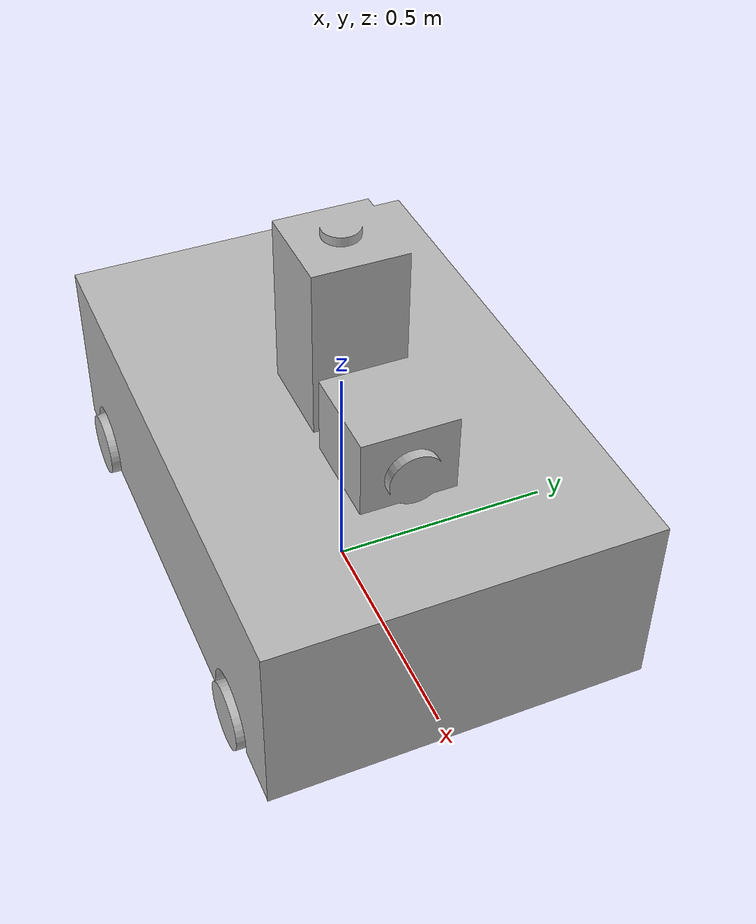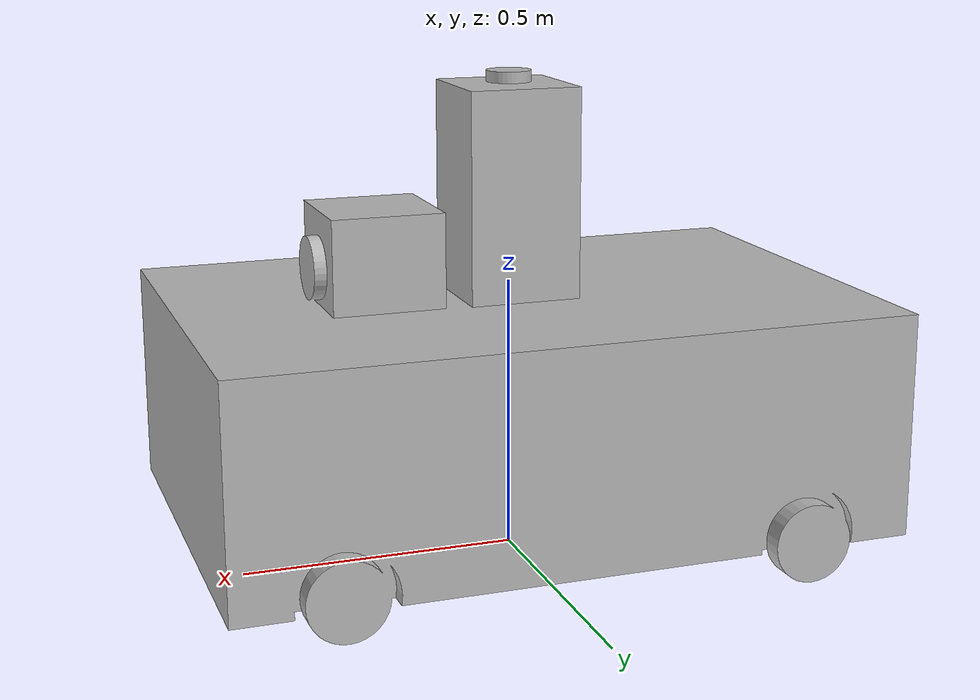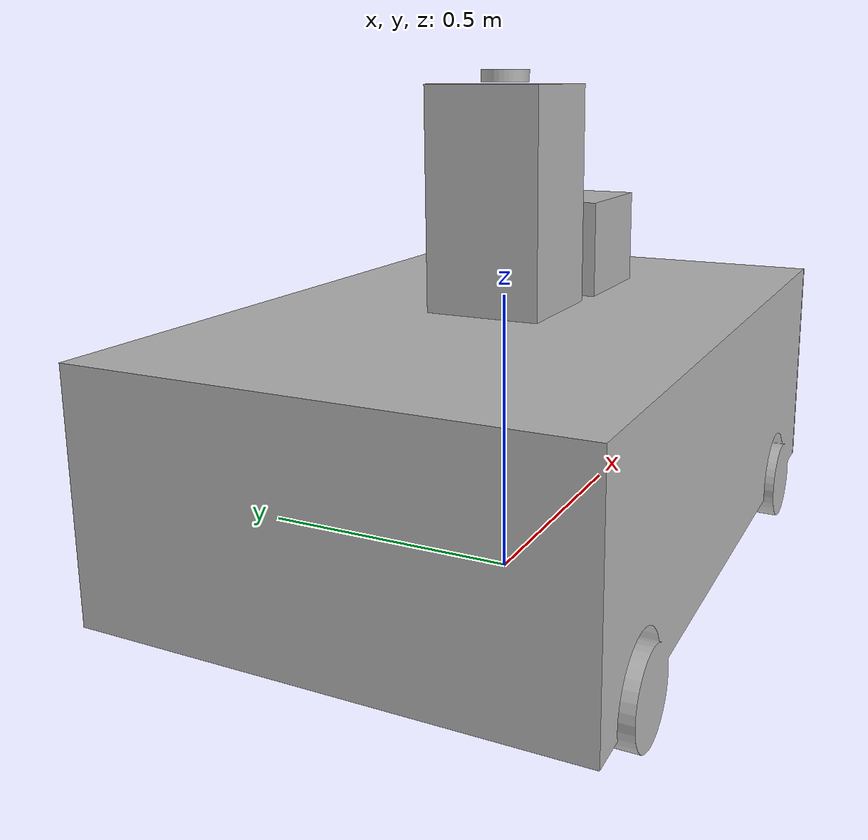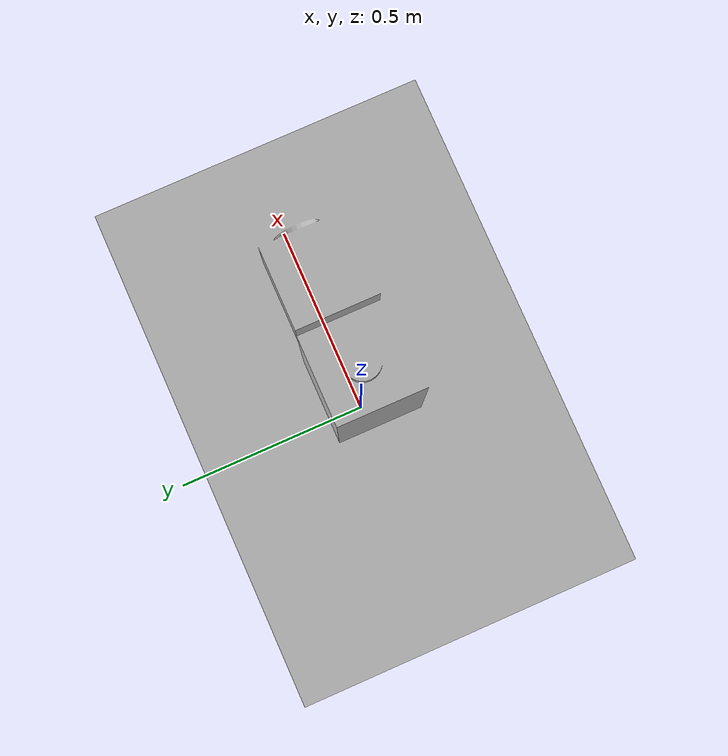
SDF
<?xml version="1.0" ?>
<sdf version="1.6">
  <model name="robo_camuflado">
    <static>false</static>  <!-- Defina como true se o modelo não deve mover-se -->

    <link name="base_link">
      <visual name="visual">
        <geometry>
          <mesh>
            <uri>model://novo_robot/robo_camuflado.dae</uri>
          </mesh>
        </geometry>
      </visual>

      <collision name="collision">
        <geometry>
          <mesh>
            <uri>model://novo_robot/robo_camuflado.dae</uri>
          </mesh>
        </geometry>
      </collision>

      <inertial>
        <mass>1.0</mass>
        <inertia>
          <ixx>0.1</ixx>
          <iyy>0.1</iyy>
          <izz>0.1</izz>
          <ixy>0.0</ixy>
          <ixz>0.0</ixz>
          <iyz>0.0</iyz>
        </inertia>
      </inertial>
    </link>
  </model>
</sdf>
